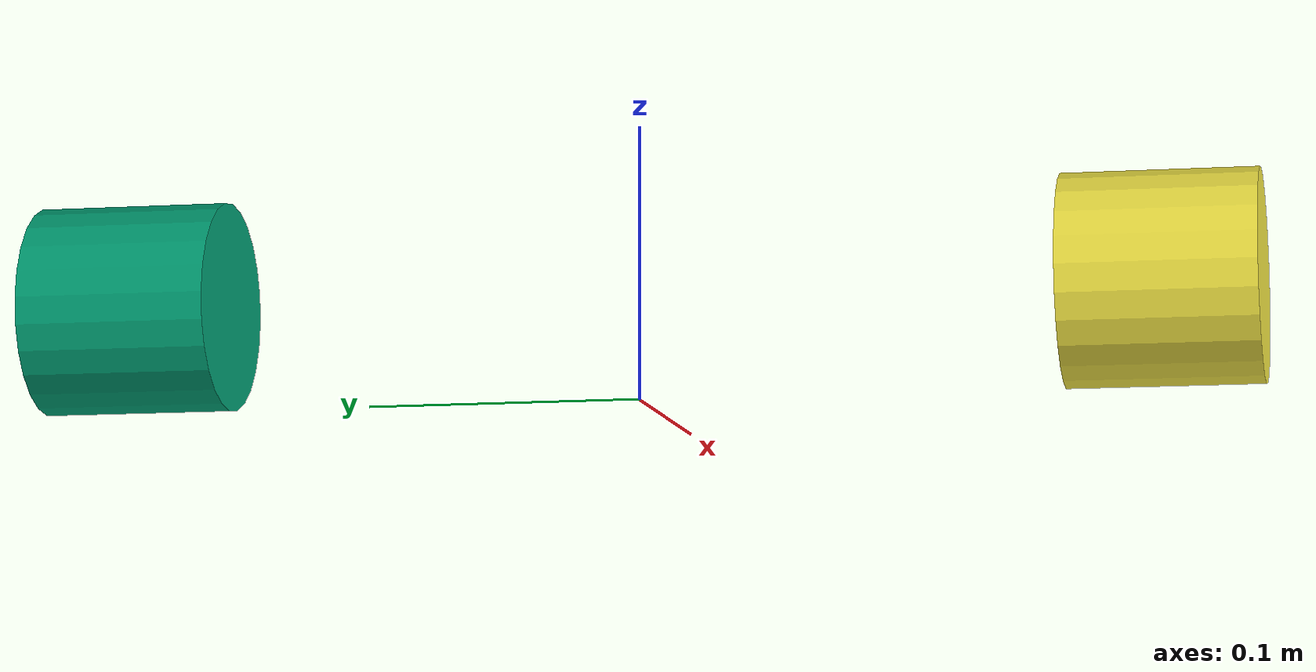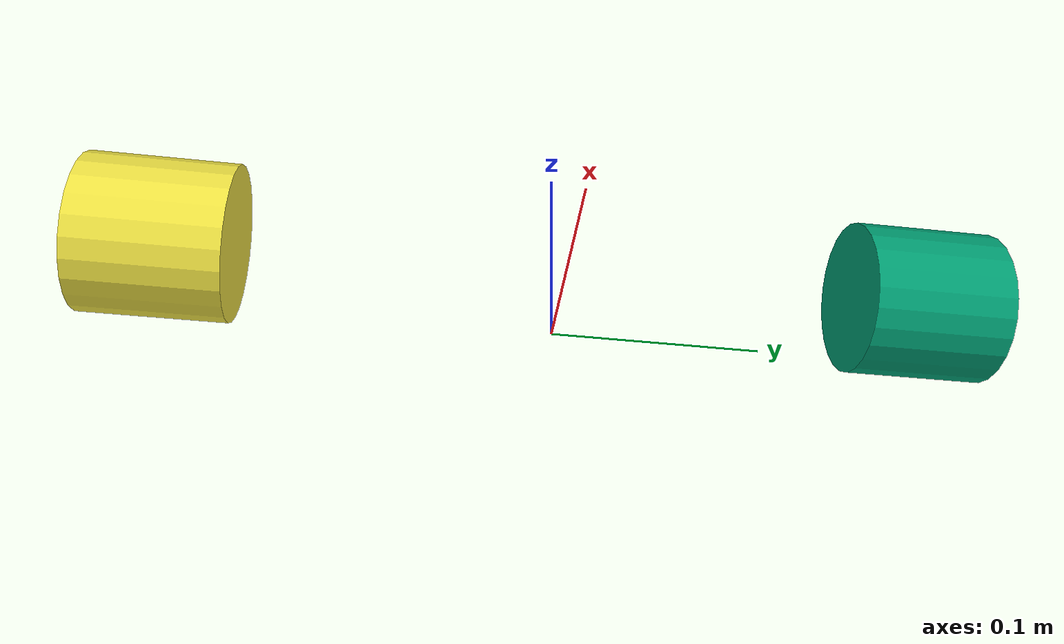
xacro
<?xml version="1.0"?>
<robot name="my_custom_cugo" xmlns:xacro="http://www.ros.org/wiki/xacro">

  <!-- cugo共通のurdf -->
  <xacro:include filename="$(find cugo_ros2_control2)/urdf/parts/cugo_base.urdf.xacro" />
  <xacro:cugo_base />

  <!-- 任意のセンサを追加するurdf -->

</robot>

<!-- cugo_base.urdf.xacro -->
<robot name="cugo" xmlns:xacro="http://www.ros.org/wiki/xacro">

  <xacro:macro name="cugo_base">

    <link name="base_footprint" />
    <link name="base_link" />

    <joint name="base_footprint_to_base_link_joint" type="fixed">
      <parent link="base_footprint"/>
      <child link="base_link"/>
      <origin xyz="0 0 0" rpy="0 0 0" />
    </joint>

    <link name="left_clawler_link">
       <visual>
        <geometry>
          <cylinder radius="0.03835" length="0.07"/>
        </geometry>
        <origin rpy="1.5707 0 0" xyz="0 0 0"/>
      </visual>
    </link>

    <joint name="base_to_left_clawler_joint" type="continuous">
      <origin xyz="0.0 0.188 0.03835" rpy="0 0 0"/>
      <parent link="base_link"/>
      <child link="left_clawler_link"/>
      <axis xyz="0 1 0"/>
    </joint>

    <link name="right_crawler_link">
      <visual>
        <geometry>
          <cylinder radius="0.03835" length="0.07"/>
        </geometry>
        <origin rpy="1.5707 0 0" xyz="0 0 0"/>
      </visual>
    </link>

    <joint name="base_to_right_clawler_joint" type="continuous">
      <origin xyz="0.0 -0.188 0.03835" rpy="0 0 0"/>
      <parent link="base_link"/>
      <child link="right_crawler_link"/>
      <axis xyz="0 1 0"/>
    </joint>

  </xacro:macro>

</robot>
